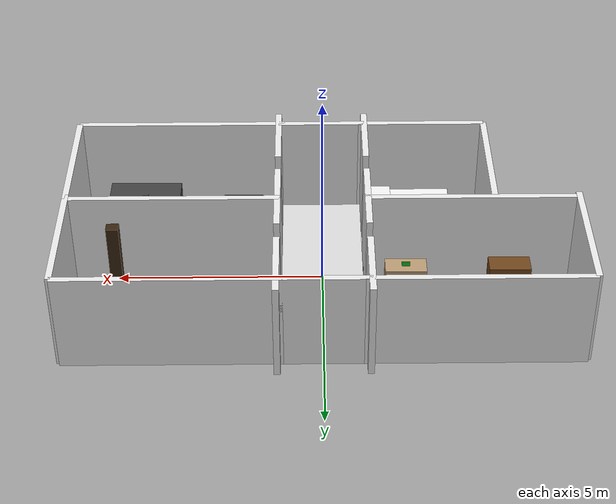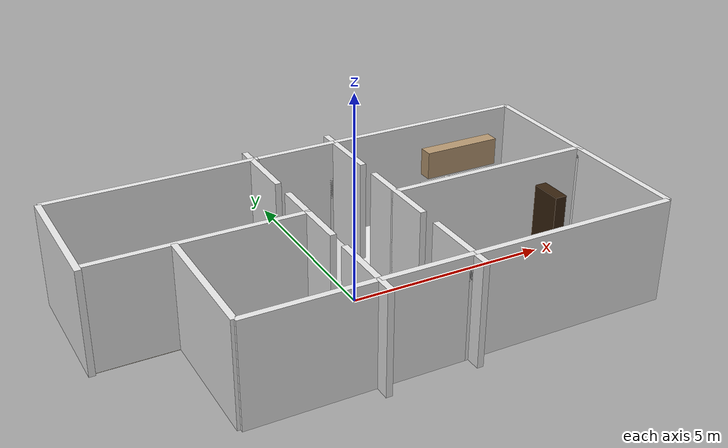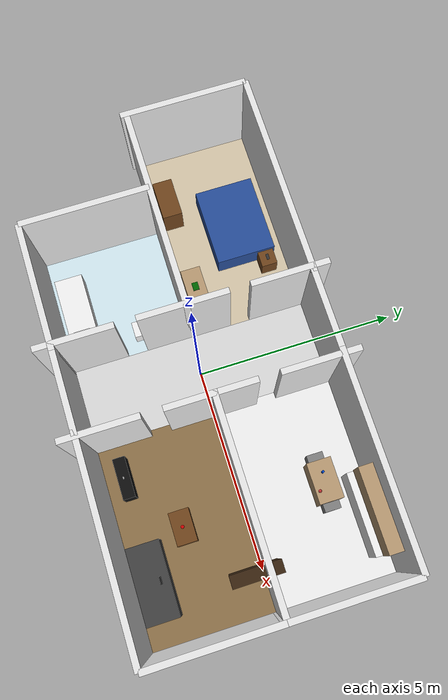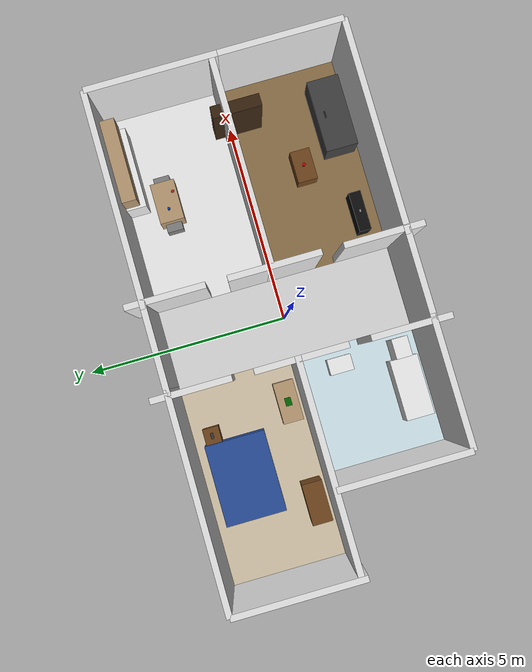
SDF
<?xml version="1.0" ?>
<sdf version="1.9">
  <world name="apartment">

    <!-- Physics: 1 ms fixed step, DART solver -->
    <physics name="1ms" type="ignored">
      <max_step_size>0.001</max_step_size>
      <real_time_factor>1.0</real_time_factor>
    </physics>

    <!-- Gravity -->
    <gravity>0 0 -9.81</gravity>

    <!-- Required Gazebo Harmonic system plugins -->
    <plugin filename="gz-sim-physics-system"
            name="gz::sim::systems::Physics"/>
    <plugin filename="gz-sim-user-commands-system"
            name="gz::sim::systems::UserCommands"/>
    <plugin filename="gz-sim-scene-broadcaster-system"
            name="gz::sim::systems::SceneBroadcaster"/>
    <plugin filename="gz-sim-sensors-system"
            name="gz::sim::systems::Sensors">
      <render_engine>ogre2</render_engine>
    </plugin>
    <plugin filename="gz-sim-imu-system"
            name="gz::sim::systems::Imu"/>
    <plugin filename="gz-sim-contact-system"
            name="gz::sim::systems::Contact"/>

    <!-- ==================== GLOBAL LIGHTING ==================== -->

    <!-- Sun: primary directional light -->
    <light type="directional" name="sun">
      <cast_shadows>true</cast_shadows>
      <pose>0 0 10 0 0 0</pose>
      <diffuse>0.8 0.8 0.8 1</diffuse>
      <specular>0.2 0.2 0.2 1</specular>
      <direction>-0.5 0.1 -0.9</direction>
    </light>

    <!-- Per-room point lights at ceiling height z=2.3 m -->
    <!-- Hallway ceiling lamp -->
    <light type="point" name="light_hallway">
      <cast_shadows>false</cast_shadows>
      <pose>0 0 2.3 0 0 0</pose>
      <diffuse>0.9 0.9 0.9 1</diffuse>
      <specular>0.1 0.1 0.1 1</specular>
      <attenuation>
        <range>8</range>
        <constant>0.5</constant>
        <linear>0.02</linear>
        <quadratic>0.001</quadratic>
      </attenuation>
    </light>

    <!-- Living room ceiling lamp -->
    <light type="point" name="light_living_room">
      <cast_shadows>false</cast_shadows>
      <pose>3.5 -1.5 2.3 0 0 0</pose>
      <diffuse>0.9 0.85 0.75 1</diffuse>
      <specular>0.1 0.1 0.1 1</specular>
      <attenuation>
        <range>8</range>
        <constant>0.5</constant>
        <linear>0.02</linear>
        <quadratic>0.001</quadratic>
      </attenuation>
    </light>

    <!-- Kitchen ceiling lamp -->
    <light type="point" name="light_kitchen">
      <cast_shadows>false</cast_shadows>
      <pose>3.5 1.5 2.3 0 0 0</pose>
      <diffuse>1.0 1.0 0.95 1</diffuse>
      <specular>0.1 0.1 0.1 1</specular>
      <attenuation>
        <range>8</range>
        <constant>0.5</constant>
        <linear>0.02</linear>
        <quadratic>0.001</quadratic>
      </attenuation>
    </light>

    <!-- Bedroom ceiling lamp -->
    <light type="point" name="light_bedroom">
      <cast_shadows>false</cast_shadows>
      <pose>-3.5 1.5 2.3 0 0 0</pose>
      <diffuse>0.85 0.85 0.9 1</diffuse>
      <specular>0.1 0.1 0.1 1</specular>
      <attenuation>
        <range>8</range>
        <constant>0.5</constant>
        <linear>0.02</linear>
        <quadratic>0.001</quadratic>
      </attenuation>
    </light>

    <!-- Bathroom ceiling lamp -->
    <light type="point" name="light_bathroom">
      <cast_shadows>false</cast_shadows>
      <pose>-2.5 -1.5 2.3 0 0 0</pose>
      <diffuse>0.95 0.98 1.0 1</diffuse>
      <specular>0.1 0.1 0.1 1</specular>
      <attenuation>
        <range>6</range>
        <constant>0.5</constant>
        <linear>0.02</linear>
        <quadratic>0.001</quadratic>
      </attenuation>
    </light>

    <!-- ==================== HALLWAY ==================== -->
    <!-- Dimensions: x=[-1,1], y=[-3,3], 2m wide x 6m long -->
    <!-- Floor: light gray #D8D8D8 -->

    <model name="floor_hallway">
      <static>true</static>
      <pose>0 0 0 0 0 0</pose>
      <link name="link">
        <collision name="collision">
          <geometry>
            <box><size>2.0 6.0 0.01</size></box>
          </geometry>
        </collision>
        <visual name="visual">
          <geometry>
            <box><size>2.0 6.0 0.01</size></box>
          </geometry>
          <material>
            <ambient>0.85 0.85 0.85 1</ambient>
            <diffuse>0.85 0.85 0.85 1</diffuse>
            <specular>0.1 0.1 0.1 1</specular>
          </material>
        </visual>
      </link>
    </model>

    <!-- Hallway north outer wall: y=3, x=[-1,1], 2m wide -->
    <model name="wall_hallway_north">
      <static>true</static>
      <pose>0 3.075 1.25 0 0 0</pose>
      <link name="link">
        <collision name="collision">
          <geometry>
            <box><size>2.15 0.15 2.5</size></box>
          </geometry>
        </collision>
        <visual name="visual">
          <geometry>
            <box><size>2.15 0.15 2.5</size></box>
          </geometry>
          <material>
            <ambient>0.91 0.91 0.91 1</ambient>
            <diffuse>0.91 0.91 0.91 1</diffuse>
            <specular>0.05 0.05 0.05 1</specular>
          </material>
        </visual>
      </link>
    </model>

    <!-- Hallway south outer wall: y=-3, x=[-1,1], 2m wide -->
    <model name="wall_hallway_south">
      <static>true</static>
      <pose>0 -3.075 1.25 0 0 0</pose>
      <link name="link">
        <collision name="collision">
          <geometry>
            <box><size>2.15 0.15 2.5</size></box>
          </geometry>
        </collision>
        <visual name="visual">
          <geometry>
            <box><size>2.15 0.15 2.5</size></box>
          </geometry>
          <material>
            <ambient>0.91 0.91 0.91 1</ambient>
            <diffuse>0.91 0.91 0.91 1</diffuse>
            <specular>0.05 0.05 0.05 1</specular>
          </material>
        </visual>
      </link>
    </model>

    <!-- Hallway east wall segments (with D1 at y=-1.5 and D2 at y=1.5) -->
    <!-- D1 gap: y=[-2.0, -1.1]  — 0.9m opening for living room -->
    <!-- D2 gap: y=[ 1.1,  2.0]  — 0.9m opening for kitchen -->
    <!-- East wall south segment: y=[-3, -2.0] -->
    <model name="wall_hallway_east_south">
      <static>true</static>
      <pose>1.075 -2.55 1.25 0 0 0</pose>
      <link name="link">
        <collision name="collision">
          <geometry>
            <box><size>0.15 1.9 2.5</size></box>
          </geometry>
        </collision>
        <visual name="visual">
          <geometry>
            <box><size>0.15 1.9 2.5</size></box>
          </geometry>
          <material>
            <ambient>0.91 0.91 0.91 1</ambient>
            <diffuse>0.91 0.91 0.91 1</diffuse>
            <specular>0.05 0.05 0.05 1</specular>
          </material>
        </visual>
      </link>
    </model>

    <!-- East wall middle segment: y=[-1.1, 1.1] — between the two doors -->
    <model name="wall_hallway_east_mid">
      <static>true</static>
      <pose>1.075 0 1.25 0 0 0</pose>
      <link name="link">
        <collision name="collision">
          <geometry>
            <box><size>0.15 2.2 2.5</size></box>
          </geometry>
        </collision>
        <visual name="visual">
          <geometry>
            <box><size>0.15 2.2 2.5</size></box>
          </geometry>
          <material>
            <ambient>0.91 0.91 0.91 1</ambient>
            <diffuse>0.91 0.91 0.91 1</diffuse>
            <specular>0.05 0.05 0.05 1</specular>
          </material>
        </visual>
      </link>
    </model>

    <!-- East wall north segment: y=[2.0, 3.0] -->
    <model name="wall_hallway_east_north">
      <static>true</static>
      <pose>1.075 2.55 1.25 0 0 0</pose>
      <link name="link">
        <collision name="collision">
          <geometry>
            <box><size>0.15 1.9 2.5</size></box>
          </geometry>
        </collision>
        <visual name="visual">
          <geometry>
            <box><size>0.15 1.9 2.5</size></box>
          </geometry>
          <material>
            <ambient>0.91 0.91 0.91 1</ambient>
            <diffuse>0.91 0.91 0.91 1</diffuse>
            <specular>0.05 0.05 0.05 1</specular>
          </material>
        </visual>
      </link>
    </model>

    <!-- Hallway west wall segments (with D3 at y=1.5 and D4 at y=-1.5) -->
    <!-- D4 gap: y=[-2.0, -1.1]  — 0.9m opening for bathroom -->
    <!-- D3 gap: y=[ 1.1,  2.0]  — 0.9m opening for bedroom -->
    <!-- West wall south segment: y=[-3, -2.0] -->
    <model name="wall_hallway_west_south">
      <static>true</static>
      <pose>-1.075 -2.55 1.25 0 0 0</pose>
      <link name="link">
        <collision name="collision">
          <geometry>
            <box><size>0.15 1.9 2.5</size></box>
          </geometry>
        </collision>
        <visual name="visual">
          <geometry>
            <box><size>0.15 1.9 2.5</size></box>
          </geometry>
          <material>
            <ambient>0.91 0.91 0.91 1</ambient>
            <diffuse>0.91 0.91 0.91 1</diffuse>
            <specular>0.05 0.05 0.05 1</specular>
          </material>
        </visual>
      </link>
    </model>

    <!-- West wall middle segment: y=[-1.1, 1.1] — between the two doors -->
    <model name="wall_hallway_west_mid">
      <static>true</static>
      <pose>-1.075 0 1.25 0 0 0</pose>
      <link name="link">
        <collision name="collision">
          <geometry>
            <box><size>0.15 2.2 2.5</size></box>
          </geometry>
        </collision>
        <visual name="visual">
          <geometry>
            <box><size>0.15 2.2 2.5</size></box>
          </geometry>
          <material>
            <ambient>0.91 0.91 0.91 1</ambient>
            <diffuse>0.91 0.91 0.91 1</diffuse>
            <specular>0.05 0.05 0.05 1</specular>
          </material>
        </visual>
      </link>
    </model>

    <!-- West wall north segment: y=[2.0, 3.0] -->
    <model name="wall_hallway_west_north">
      <static>true</static>
      <pose>-1.075 2.55 1.25 0 0 0</pose>
      <link name="link">
        <collision name="collision">
          <geometry>
            <box><size>0.15 1.9 2.5</size></box>
          </geometry>
        </collision>
        <visual name="visual">
          <geometry>
            <box><size>0.15 1.9 2.5</size></box>
          </geometry>
          <material>
            <ambient>0.91 0.91 0.91 1</ambient>
            <diffuse>0.91 0.91 0.91 1</diffuse>
            <specular>0.05 0.05 0.05 1</specular>
          </material>
        </visual>
      </link>
    </model>

    <!-- ==================== LIVING ROOM ==================== -->
    <!-- Dimensions: x=[1,6], y=[-3,0], 5m x 3m -->
    <!-- Floor: warm wood #8B6F47 -->

    <model name="floor_living_room">
      <static>true</static>
      <pose>3.5 -1.5 0 0 0 0</pose>
      <link name="link">
        <collision name="collision">
          <geometry>
            <box><size>5.0 3.0 0.01</size></box>
          </geometry>
        </collision>
        <visual name="visual">
          <geometry>
            <box><size>5.0 3.0 0.01</size></box>
          </geometry>
          <material>
            <ambient>0.55 0.44 0.28 1</ambient>
            <diffuse>0.55 0.44 0.28 1</diffuse>
            <specular>0.05 0.05 0.05 1</specular>
          </material>
        </visual>
      </link>
    </model>

    <!-- Living room outer east wall: x=6.15, y=[-3,0] -->
    <model name="wall_living_east">
      <static>true</static>
      <pose>6.075 -1.5 1.25 0 0 0</pose>
      <link name="link">
        <collision name="collision">
          <geometry>
            <box><size>0.15 3.15 2.5</size></box>
          </geometry>
        </collision>
        <visual name="visual">
          <geometry>
            <box><size>0.15 3.15 2.5</size></box>
          </geometry>
          <material>
            <ambient>0.91 0.91 0.91 1</ambient>
            <diffuse>0.91 0.91 0.91 1</diffuse>
            <specular>0.05 0.05 0.05 1</specular>
          </material>
        </visual>
      </link>
    </model>

    <!-- Living room outer south wall: y=-3.075, x=[1,6] -->
    <model name="wall_living_south">
      <static>true</static>
      <pose>3.5 -3.075 1.25 0 0 0</pose>
      <link name="link">
        <collision name="collision">
          <geometry>
            <box><size>5.15 0.15 2.5</size></box>
          </geometry>
        </collision>
        <visual name="visual">
          <geometry>
            <box><size>5.15 0.15 2.5</size></box>
          </geometry>
          <material>
            <ambient>0.91 0.91 0.91 1</ambient>
            <diffuse>0.91 0.91 0.91 1</diffuse>
            <specular>0.05 0.05 0.05 1</specular>
          </material>
        </visual>
      </link>
    </model>

    <!-- Living room / Kitchen divider wall: y=0.075, x=[1,6] (no door) -->
    <model name="wall_living_kitchen_divider">
      <static>true</static>
      <pose>3.5 0.075 1.25 0 0 0</pose>
      <link name="link">
        <collision name="collision">
          <geometry>
            <box><size>5.0 0.15 2.5</size></box>
          </geometry>
        </collision>
        <visual name="visual">
          <geometry>
            <box><size>5.0 0.15 2.5</size></box>
          </geometry>
          <material>
            <ambient>0.91 0.91 0.91 1</ambient>
            <diffuse>0.91 0.91 0.91 1</diffuse>
            <specular>0.05 0.05 0.05 1</specular>
          </material>
        </visual>
      </link>
    </model>

    <!-- ==================== LIVING ROOM FURNITURE ==================== -->

    <!-- Sofa: pos=(4.5, -2.5, 0.4), size=(1.8, 0.8, 0.8), dark gray -->
    <model name="sofa">
      <static>true</static>
      <pose>4.5 -2.5 0.4 0 0 0</pose>
      <link name="link">
        <collision name="collision">
          <geometry>
            <box><size>1.8 0.8 0.8</size></box>
          </geometry>
        </collision>
        <visual name="visual">
          <geometry>
            <box><size>1.8 0.8 0.8</size></box>
          </geometry>
          <material>
            <ambient>0.25 0.25 0.25 1</ambient>
            <diffuse>0.25 0.25 0.25 1</diffuse>
            <specular>0.05 0.05 0.05 1</specular>
          </material>
        </visual>
      </link>
    </model>

    <!-- Coffee table: pos=(3.5, -1.5, 0.25), size=(0.8, 0.5, 0.5), brown -->
    <model name="coffee_table">
      <static>true</static>
      <pose>3.5 -1.5 0.25 0 0 0</pose>
      <link name="link">
        <collision name="collision">
          <geometry>
            <box><size>0.8 0.5 0.5</size></box>
          </geometry>
        </collision>
        <visual name="visual">
          <geometry>
            <box><size>0.8 0.5 0.5</size></box>
          </geometry>
          <material>
            <ambient>0.44 0.27 0.11 1</ambient>
            <diffuse>0.44 0.27 0.11 1</diffuse>
            <specular>0.05 0.05 0.05 1</specular>
          </material>
        </visual>
      </link>
    </model>

    <!-- Bookshelf: pos=(5.0, 0.0, 0.9), size=(0.3, 1.2, 1.8), dark brown -->
    <model name="bookshelf">
      <static>true</static>
      <pose>5.0 -0.2 0.9 0 0 0</pose>
      <link name="link">
        <collision name="collision">
          <geometry>
            <box><size>0.3 1.2 1.8</size></box>
          </geometry>
        </collision>
        <visual name="visual">
          <geometry>
            <box><size>0.3 1.2 1.8</size></box>
          </geometry>
          <material>
            <ambient>0.22 0.14 0.06 1</ambient>
            <diffuse>0.22 0.14 0.06 1</diffuse>
            <specular>0.05 0.05 0.05 1</specular>
          </material>
        </visual>
      </link>
    </model>

    <!-- TV stand: pos=(2.0, -2.5, 0.3), size=(1.0, 0.3, 0.6), black -->
    <model name="tv_stand">
      <static>true</static>
      <pose>2.0 -2.5 0.3 0 0 0</pose>
      <link name="link">
        <collision name="collision">
          <geometry>
            <box><size>1.0 0.3 0.6</size></box>
          </geometry>
        </collision>
        <visual name="visual">
          <geometry>
            <box><size>1.0 0.3 0.6</size></box>
          </geometry>
          <material>
            <ambient>0.05 0.05 0.05 1</ambient>
            <diffuse>0.05 0.05 0.05 1</diffuse>
            <specular>0.1 0.1 0.1 1</specular>
          </material>
        </visual>
      </link>
    </model>

    <!-- ==================== KITCHEN ==================== -->
    <!-- Dimensions: x=[1,6], y=[0,3], 5m x 3m -->
    <!-- Floor: white tile #F0F0F0 -->

    <model name="floor_kitchen">
      <static>true</static>
      <pose>3.5 1.5 0 0 0 0</pose>
      <link name="link">
        <collision name="collision">
          <geometry>
            <box><size>5.0 3.0 0.01</size></box>
          </geometry>
        </collision>
        <visual name="visual">
          <geometry>
            <box><size>5.0 3.0 0.01</size></box>
          </geometry>
          <material>
            <ambient>0.94 0.94 0.94 1</ambient>
            <diffuse>0.94 0.94 0.94 1</diffuse>
            <specular>0.15 0.15 0.15 1</specular>
          </material>
        </visual>
      </link>
    </model>

    <!-- Kitchen outer east wall: x=6.075, y=[0,3] -->
    <model name="wall_kitchen_east">
      <static>true</static>
      <pose>6.075 1.5 1.25 0 0 0</pose>
      <link name="link">
        <collision name="collision">
          <geometry>
            <box><size>0.15 3.15 2.5</size></box>
          </geometry>
        </collision>
        <visual name="visual">
          <geometry>
            <box><size>0.15 3.15 2.5</size></box>
          </geometry>
          <material>
            <ambient>0.91 0.91 0.91 1</ambient>
            <diffuse>0.91 0.91 0.91 1</diffuse>
            <specular>0.05 0.05 0.05 1</specular>
          </material>
        </visual>
      </link>
    </model>

    <!-- Kitchen outer north wall: y=3.075, x=[1,6] -->
    <model name="wall_kitchen_north">
      <static>true</static>
      <pose>3.5 3.075 1.25 0 0 0</pose>
      <link name="link">
        <collision name="collision">
          <geometry>
            <box><size>5.15 0.15 2.5</size></box>
          </geometry>
        </collision>
        <visual name="visual">
          <geometry>
            <box><size>5.15 0.15 2.5</size></box>
          </geometry>
          <material>
            <ambient>0.91 0.91 0.91 1</ambient>
            <diffuse>0.91 0.91 0.91 1</diffuse>
            <specular>0.05 0.05 0.05 1</specular>
          </material>
        </visual>
      </link>
    </model>

    <!-- ==================== KITCHEN FURNITURE ==================== -->

    <!-- Kitchen table: pos=(3.5, 2.0, 0.38), size=(1.0, 0.6, 0.76), light brown -->
    <model name="kitchen_table">
      <static>true</static>
      <pose>3.5 2.0 0.38 0 0 0</pose>
      <link name="link">
        <collision name="collision">
          <geometry>
            <box><size>1.0 0.6 0.76</size></box>
          </geometry>
        </collision>
        <visual name="visual">
          <geometry>
            <box><size>1.0 0.6 0.76</size></box>
          </geometry>
          <material>
            <ambient>0.72 0.60 0.45 1</ambient>
            <diffuse>0.72 0.60 0.45 1</diffuse>
            <specular>0.05 0.05 0.05 1</specular>
          </material>
        </visual>
      </link>
    </model>

    <!-- Kitchen chair 1: pos=(3.0, 2.0, 0.22), size=(0.4, 0.4, 0.45), gray -->
    <model name="kitchen_chair_1">
      <static>true</static>
      <pose>3.0 2.0 0.22 0 0 0</pose>
      <link name="link">
        <collision name="collision">
          <geometry>
            <box><size>0.4 0.4 0.45</size></box>
          </geometry>
        </collision>
        <visual name="visual">
          <geometry>
            <box><size>0.4 0.4 0.45</size></box>
          </geometry>
          <material>
            <ambient>0.5 0.5 0.5 1</ambient>
            <diffuse>0.5 0.5 0.5 1</diffuse>
            <specular>0.05 0.05 0.05 1</specular>
          </material>
        </visual>
      </link>
    </model>

    <!-- Kitchen chair 2: pos=(4.0, 2.0, 0.22), size=(0.4, 0.4, 0.45), gray -->
    <model name="kitchen_chair_2">
      <static>true</static>
      <pose>4.0 2.0 0.22 0 0 0</pose>
      <link name="link">
        <collision name="collision">
          <geometry>
            <box><size>0.4 0.4 0.45</size></box>
          </geometry>
        </collision>
        <visual name="visual">
          <geometry>
            <box><size>0.4 0.4 0.45</size></box>
          </geometry>
          <material>
            <ambient>0.5 0.5 0.5 1</ambient>
            <diffuse>0.5 0.5 0.5 1</diffuse>
            <specular>0.05 0.05 0.05 1</specular>
          </material>
        </visual>
      </link>
    </model>

    <!-- Counter (base): pos=(4.5, 2.8, 0.45), size=(2.0, 0.6, 0.9), white -->
    <model name="counter">
      <static>true</static>
      <pose>4.5 2.8 0.45 0 0 0</pose>
      <link name="link">
        <collision name="collision">
          <geometry>
            <box><size>2.0 0.6 0.9</size></box>
          </geometry>
        </collision>
        <visual name="visual">
          <geometry>
            <box><size>2.0 0.6 0.9</size></box>
          </geometry>
          <material>
            <ambient>0.95 0.95 0.95 1</ambient>
            <diffuse>0.95 0.95 0.95 1</diffuse>
            <specular>0.2 0.2 0.2 1</specular>
          </material>
        </visual>
      </link>
    </model>

    <!-- Cabinet (above counter): pos=(4.5, 2.8, 1.5), size=(2.0, 0.35, 0.7), light brown -->
    <model name="cabinet">
      <static>true</static>
      <pose>4.5 2.8 1.5 0 0 0</pose>
      <link name="link">
        <collision name="collision">
          <geometry>
            <box><size>2.0 0.35 0.7</size></box>
          </geometry>
        </collision>
        <visual name="visual">
          <geometry>
            <box><size>2.0 0.35 0.7</size></box>
          </geometry>
          <material>
            <ambient>0.72 0.60 0.45 1</ambient>
            <diffuse>0.72 0.60 0.45 1</diffuse>
            <specular>0.05 0.05 0.05 1</specular>
          </material>
        </visual>
      </link>
    </model>

    <!-- ==================== BEDROOM ==================== -->
    <!-- Dimensions: x=[-6,-1], y=[0,3], 5m x 3m -->
    <!-- Floor: beige carpet #D4C5A9 -->

    <model name="floor_bedroom">
      <static>true</static>
      <pose>-3.5 1.5 0 0 0 0</pose>
      <link name="link">
        <collision name="collision">
          <geometry>
            <box><size>5.0 3.0 0.01</size></box>
          </geometry>
        </collision>
        <visual name="visual">
          <geometry>
            <box><size>5.0 3.0 0.01</size></box>
          </geometry>
          <material>
            <ambient>0.83 0.77 0.66 1</ambient>
            <diffuse>0.83 0.77 0.66 1</diffuse>
            <specular>0.02 0.02 0.02 1</specular>
          </material>
        </visual>
      </link>
    </model>

    <!-- Bedroom outer west wall: x=-6.075, y=[0,3] -->
    <model name="wall_bedroom_west">
      <static>true</static>
      <pose>-6.075 1.5 1.25 0 0 0</pose>
      <link name="link">
        <collision name="collision">
          <geometry>
            <box><size>0.15 3.15 2.5</size></box>
          </geometry>
        </collision>
        <visual name="visual">
          <geometry>
            <box><size>0.15 3.15 2.5</size></box>
          </geometry>
          <material>
            <ambient>0.91 0.91 0.91 1</ambient>
            <diffuse>0.91 0.91 0.91 1</diffuse>
            <specular>0.05 0.05 0.05 1</specular>
          </material>
        </visual>
      </link>
    </model>

    <!-- Bedroom outer north wall: y=3.075, x=[-6,-1] -->
    <model name="wall_bedroom_north">
      <static>true</static>
      <pose>-3.5 3.075 1.25 0 0 0</pose>
      <link name="link">
        <collision name="collision">
          <geometry>
            <box><size>5.15 0.15 2.5</size></box>
          </geometry>
        </collision>
        <visual name="visual">
          <geometry>
            <box><size>5.15 0.15 2.5</size></box>
          </geometry>
          <material>
            <ambient>0.91 0.91 0.91 1</ambient>
            <diffuse>0.91 0.91 0.91 1</diffuse>
            <specular>0.05 0.05 0.05 1</specular>
          </material>
        </visual>
      </link>
    </model>

    <!-- Bedroom south wall (divider with bathroom): y=0.075, x=[-6,-1] -->
    <model name="wall_bedroom_south">
      <static>true</static>
      <pose>-3.5 0.075 1.25 0 0 0</pose>
      <link name="link">
        <collision name="collision">
          <geometry>
            <box><size>5.0 0.15 2.5</size></box>
          </geometry>
        </collision>
        <visual name="visual">
          <geometry>
            <box><size>5.0 0.15 2.5</size></box>
          </geometry>
          <material>
            <ambient>0.91 0.91 0.91 1</ambient>
            <diffuse>0.91 0.91 0.91 1</diffuse>
            <specular>0.05 0.05 0.05 1</specular>
          </material>
        </visual>
      </link>
    </model>

    <!-- ==================== BEDROOM FURNITURE ==================== -->

    <!-- Bed: pos=(-3.5, 2.0, 0.3), size=(2.0, 1.5, 0.6), blue -->
    <model name="bed">
      <static>true</static>
      <pose>-3.5 2.0 0.3 0 0 0</pose>
      <link name="link">
        <collision name="collision">
          <geometry>
            <box><size>2.0 1.5 0.6</size></box>
          </geometry>
        </collision>
        <visual name="visual">
          <geometry>
            <box><size>2.0 1.5 0.6</size></box>
          </geometry>
          <material>
            <ambient>0.15 0.30 0.60 1</ambient>
            <diffuse>0.15 0.30 0.60 1</diffuse>
            <specular>0.05 0.05 0.05 1</specular>
          </material>
        </visual>
      </link>
    </model>

    <!-- Nightstand: pos=(-2.3, 2.5, 0.25), size=(0.4, 0.4, 0.5), brown -->
    <model name="nightstand">
      <static>true</static>
      <pose>-2.3 2.5 0.25 0 0 0</pose>
      <link name="link">
        <collision name="collision">
          <geometry>
            <box><size>0.4 0.4 0.5</size></box>
          </geometry>
        </collision>
        <visual name="visual">
          <geometry>
            <box><size>0.4 0.4 0.5</size></box>
          </geometry>
          <material>
            <ambient>0.44 0.27 0.11 1</ambient>
            <diffuse>0.44 0.27 0.11 1</diffuse>
            <specular>0.05 0.05 0.05 1</specular>
          </material>
        </visual>
      </link>
    </model>

    <!-- Dresser: pos=(-4.5, 0.5, 0.4), size=(1.0, 0.5, 0.8), brown -->
    <model name="dresser">
      <static>true</static>
      <pose>-4.5 0.5 0.4 0 0 0</pose>
      <link name="link">
        <collision name="collision">
          <geometry>
            <box><size>1.0 0.5 0.8</size></box>
          </geometry>
        </collision>
        <visual name="visual">
          <geometry>
            <box><size>1.0 0.5 0.8</size></box>
          </geometry>
          <material>
            <ambient>0.44 0.27 0.11 1</ambient>
            <diffuse>0.44 0.27 0.11 1</diffuse>
            <specular>0.05 0.05 0.05 1</specular>
          </material>
        </visual>
      </link>
    </model>

    <!-- Desk: pos=(-2.0, 0.5, 0.38), size=(1.0, 0.5, 0.76), light brown -->
    <model name="desk">
      <static>true</static>
      <pose>-2.0 0.5 0.38 0 0 0</pose>
      <link name="link">
        <collision name="collision">
          <geometry>
            <box><size>1.0 0.5 0.76</size></box>
          </geometry>
        </collision>
        <visual name="visual">
          <geometry>
            <box><size>1.0 0.5 0.76</size></box>
          </geometry>
          <material>
            <ambient>0.72 0.60 0.45 1</ambient>
            <diffuse>0.72 0.60 0.45 1</diffuse>
            <specular>0.05 0.05 0.05 1</specular>
          </material>
        </visual>
      </link>
    </model>

    <!-- ==================== BATHROOM ==================== -->
    <!-- Dimensions: x=[-4,-1], y=[-3,0], 3m x 3m -->
    <!-- Floor: light blue #D0E8F0 -->

    <model name="floor_bathroom">
      <static>true</static>
      <pose>-2.5 -1.5 0 0 0 0</pose>
      <link name="link">
        <collision name="collision">
          <geometry>
            <box><size>3.0 3.0 0.01</size></box>
          </geometry>
        </collision>
        <visual name="visual">
          <geometry>
            <box><size>3.0 3.0 0.01</size></box>
          </geometry>
          <material>
            <ambient>0.82 0.91 0.94 1</ambient>
            <diffuse>0.82 0.91 0.94 1</diffuse>
            <specular>0.15 0.15 0.15 1</specular>
          </material>
        </visual>
      </link>
    </model>

    <!-- Bathroom outer west wall: x=-4.075, y=[-3,0] -->
    <model name="wall_bathroom_west">
      <static>true</static>
      <pose>-4.075 -1.5 1.25 0 0 0</pose>
      <link name="link">
        <collision name="collision">
          <geometry>
            <box><size>0.15 3.15 2.5</size></box>
          </geometry>
        </collision>
        <visual name="visual">
          <geometry>
            <box><size>0.15 3.15 2.5</size></box>
          </geometry>
          <material>
            <ambient>0.91 0.91 0.91 1</ambient>
            <diffuse>0.91 0.91 0.91 1</diffuse>
            <specular>0.05 0.05 0.05 1</specular>
          </material>
        </visual>
      </link>
    </model>

    <!-- Bathroom outer south wall: y=-3.075, x=[-4,-1] -->
    <model name="wall_bathroom_south">
      <static>true</static>
      <pose>-2.5 -3.075 1.25 0 0 0</pose>
      <link name="link">
        <collision name="collision">
          <geometry>
            <box><size>3.15 0.15 2.5</size></box>
          </geometry>
        </collision>
        <visual name="visual">
          <geometry>
            <box><size>3.15 0.15 2.5</size></box>
          </geometry>
          <material>
            <ambient>0.91 0.91 0.91 1</ambient>
            <diffuse>0.91 0.91 0.91 1</diffuse>
            <specular>0.05 0.05 0.05 1</specular>
          </material>
        </visual>
      </link>
    </model>

    <!-- ==================== BATHROOM FURNITURE ==================== -->

    <!-- Bathtub: pos=(-2.5, -2.5, 0.3), size=(1.5, 0.7, 0.6), white -->
    <model name="bathtub">
      <static>true</static>
      <pose>-2.5 -2.5 0.3 0 0 0</pose>
      <link name="link">
        <collision name="collision">
          <geometry>
            <box><size>1.5 0.7 0.6</size></box>
          </geometry>
        </collision>
        <visual name="visual">
          <geometry>
            <box><size>1.5 0.7 0.6</size></box>
          </geometry>
          <material>
            <ambient>0.95 0.95 0.95 1</ambient>
            <diffuse>0.95 0.95 0.95 1</diffuse>
            <specular>0.3 0.3 0.3 1</specular>
          </material>
        </visual>
      </link>
    </model>

    <!-- Sink: pos=(-1.5, -2.5, 0.4), size=(0.5, 0.4, 0.8), white -->
    <model name="sink">
      <static>true</static>
      <pose>-1.5 -2.5 0.4 0 0 0</pose>
      <link name="link">
        <collision name="collision">
          <geometry>
            <box><size>0.5 0.4 0.8</size></box>
          </geometry>
        </collision>
        <visual name="visual">
          <geometry>
            <box><size>0.5 0.4 0.8</size></box>
          </geometry>
          <material>
            <ambient>0.95 0.95 0.95 1</ambient>
            <diffuse>0.95 0.95 0.95 1</diffuse>
            <specular>0.3 0.3 0.3 1</specular>
          </material>
        </visual>
      </link>
    </model>

    <!-- Toilet: pos=(-1.5, -1.0, 0.2), size=(0.4, 0.6, 0.4), white -->
    <model name="toilet">
      <static>true</static>
      <pose>-1.5 -1.0 0.2 0 0 0</pose>
      <link name="link">
        <collision name="collision">
          <geometry>
            <box><size>0.4 0.6 0.4</size></box>
          </geometry>
        </collision>
        <visual name="visual">
          <geometry>
            <box><size>0.4 0.6 0.4</size></box>
          </geometry>
          <material>
            <ambient>0.95 0.95 0.95 1</ambient>
            <diffuse>0.95 0.95 0.95 1</diffuse>
            <specular>0.3 0.3 0.3 1</specular>
          </material>
        </visual>
      </link>
    </model>

    <!-- ==================== GRASPABLE OBJECTS (DYNAMIC) ==================== -->
    <!-- All objects: static=false, mass > 0, inertial defined, collision defined -->

    <!-- red_cup: coffee_table surface, cylinder, red #CC0000 -->
    <model name="red_cup">
      <static>false</static>
      <pose>3.5 -1.5 0.55 0 0 0</pose>
      <link name="link">
        <inertial>
          <mass>0.15</mass>
          <inertia>
            <ixx>0.0001</ixx><iyy>0.0001</iyy><izz>0.0001</izz>
            <ixy>0</ixy><ixz>0</ixz><iyz>0</iyz>
          </inertia>
        </inertial>
        <collision name="collision">
          <geometry>
            <cylinder><radius>0.04</radius><length>0.1</length></cylinder>
          </geometry>
        </collision>
        <visual name="visual">
          <geometry>
            <cylinder><radius>0.04</radius><length>0.1</length></cylinder>
          </geometry>
          <material>
            <ambient>0.8 0.0 0.0 1</ambient>
            <diffuse>0.8 0.0 0.0 1</diffuse>
            <specular>0.1 0.1 0.1 1</specular>
          </material>
        </visual>
      </link>
    </model>

    <!-- blue_bottle: kitchen_table surface, cylinder, blue #0044CC -->
    <model name="blue_bottle">
      <static>false</static>
      <pose>3.3 2.0 0.8 0 0 0</pose>
      <link name="link">
        <inertial>
          <mass>0.3</mass>
          <inertia>
            <ixx>0.0003</ixx><iyy>0.0003</iyy><izz>0.0001</izz>
            <ixy>0</ixy><ixz>0</ixz><iyz>0</iyz>
          </inertia>
        </inertial>
        <collision name="collision">
          <geometry>
            <cylinder><radius>0.03</radius><length>0.2</length></cylinder>
          </geometry>
        </collision>
        <visual name="visual">
          <geometry>
            <cylinder><radius>0.03</radius><length>0.2</length></cylinder>
          </geometry>
          <material>
            <ambient>0.0 0.27 0.8 1</ambient>
            <diffuse>0.0 0.27 0.8 1</diffuse>
            <specular>0.2 0.2 0.3 1</specular>
          </material>
        </visual>
      </link>
    </model>

    <!-- phone: nightstand surface, box, dark gray #333333 -->
    <model name="phone">
      <static>false</static>
      <pose>-2.3 2.5 0.55 0 0 0</pose>
      <link name="link">
        <inertial>
          <mass>0.2</mass>
          <inertia>
            <ixx>0.0002</ixx><iyy>0.0003</iyy><izz>0.0001</izz>
            <ixy>0</ixy><ixz>0</ixz><iyz>0</iyz>
          </inertia>
        </inertial>
        <collision name="collision">
          <geometry>
            <box><size>0.15 0.07 0.01</size></box>
          </geometry>
        </collision>
        <visual name="visual">
          <geometry>
            <box><size>0.15 0.07 0.01</size></box>
          </geometry>
          <material>
            <ambient>0.2 0.2 0.2 1</ambient>
            <diffuse>0.2 0.2 0.2 1</diffuse>
            <specular>0.3 0.3 0.3 1</specular>
          </material>
        </visual>
      </link>
    </model>

    <!-- book: desk surface, box, green #006600 -->
    <model name="book">
      <static>false</static>
      <pose>-2.0 0.5 0.8 0 0 0</pose>
      <link name="link">
        <inertial>
          <mass>0.5</mass>
          <inertia>
            <ixx>0.001</ixx><iyy>0.001</iyy><izz>0.0005</izz>
            <ixy>0</ixy><ixz>0</ixz><iyz>0</iyz>
          </inertia>
        </inertial>
        <collision name="collision">
          <geometry>
            <box><size>0.2 0.15 0.03</size></box>
          </geometry>
        </collision>
        <visual name="visual">
          <geometry>
            <box><size>0.2 0.15 0.03</size></box>
          </geometry>
          <material>
            <ambient>0.0 0.4 0.0 1</ambient>
            <diffuse>0.0 0.4 0.0 1</diffuse>
            <specular>0.05 0.05 0.05 1</specular>
          </material>
        </visual>
      </link>
    </model>

    <!-- bowl: counter surface, cylinder, white #FFFFFF -->
    <model name="bowl">
      <static>false</static>
      <pose>4.2 2.8 0.95 0 0 0</pose>
      <link name="link">
        <inertial>
          <mass>0.2</mass>
          <inertia>
            <ixx>0.0005</ixx><iyy>0.0005</iyy><izz>0.0008</izz>
            <ixy>0</ixy><ixz>0</ixz><iyz>0</iyz>
          </inertia>
        </inertial>
        <collision name="collision">
          <geometry>
            <cylinder><radius>0.08</radius><length>0.06</length></cylinder>
          </geometry>
        </collision>
        <visual name="visual">
          <geometry>
            <cylinder><radius>0.08</radius><length>0.06</length></cylinder>
          </geometry>
          <material>
            <ambient>1.0 1.0 1.0 1</ambient>
            <diffuse>1.0 1.0 1.0 1</diffuse>
            <specular>0.4 0.4 0.4 1</specular>
          </material>
        </visual>
      </link>
    </model>

    <!-- remote: sofa surface, box, black #111111 -->
    <model name="remote">
      <static>false</static>
      <pose>4.5 -2.3 0.85 0 0 0</pose>
      <link name="link">
        <inertial>
          <mass>0.15</mass>
          <inertia>
            <ixx>0.0003</ixx><iyy>0.0003</iyy><izz>0.0002</izz>
            <ixy>0</ixy><ixz>0</ixz><iyz>0</iyz>
          </inertia>
        </inertial>
        <collision name="collision">
          <geometry>
            <box><size>0.18 0.05 0.02</size></box>
          </geometry>
        </collision>
        <visual name="visual">
          <geometry>
            <box><size>0.18 0.05 0.02</size></box>
          </geometry>
          <material>
            <ambient>0.07 0.07 0.07 1</ambient>
            <diffuse>0.07 0.07 0.07 1</diffuse>
            <specular>0.1 0.1 0.1 1</specular>
          </material>
        </visual>
      </link>
    </model>

    <!-- apple: kitchen_table surface, sphere, red #CC3333 -->
    <model name="apple">
      <static>false</static>
      <pose>3.7 1.8 0.8 0 0 0</pose>
      <link name="link">
        <inertial>
          <mass>0.2</mass>
          <inertia>
            <ixx>0.0001</ixx><iyy>0.0001</iyy><izz>0.0001</izz>
            <ixy>0</ixy><ixz>0</ixz><iyz>0</iyz>
          </inertia>
        </inertial>
        <collision name="collision">
          <geometry>
            <sphere><radius>0.04</radius></sphere>
          </geometry>
        </collision>
        <visual name="visual">
          <geometry>
            <sphere><radius>0.04</radius></sphere>
          </geometry>
          <material>
            <ambient>0.8 0.2 0.2 1</ambient>
            <diffuse>0.8 0.2 0.2 1</diffuse>
            <specular>0.1 0.1 0.1 1</specular>
          </material>
        </visual>
      </link>
    </model>

    <!-- keys: tv_stand surface, box, silver #C0C0C0 -->
    <model name="keys">
      <static>false</static>
      <pose>2.0 -2.5 0.65 0 0 0</pose>
      <link name="link">
        <inertial>
          <mass>0.05</mass>
          <inertia>
            <ixx>0.00001</ixx><iyy>0.00002</iyy><izz>0.00001</izz>
            <ixy>0</ixy><ixz>0</ixz><iyz>0</iyz>
          </inertia>
        </inertial>
        <collision name="collision">
          <geometry>
            <box><size>0.06 0.03 0.01</size></box>
          </geometry>
        </collision>
        <visual name="visual">
          <geometry>
            <box><size>0.06 0.03 0.01</size></box>
          </geometry>
          <material>
            <ambient>0.75 0.75 0.75 1</ambient>
            <diffuse>0.75 0.75 0.75 1</diffuse>
            <specular>0.6 0.6 0.6 1</specular>
          </material>
        </visual>
      </link>
    </model>

  </world>
</sdf>
